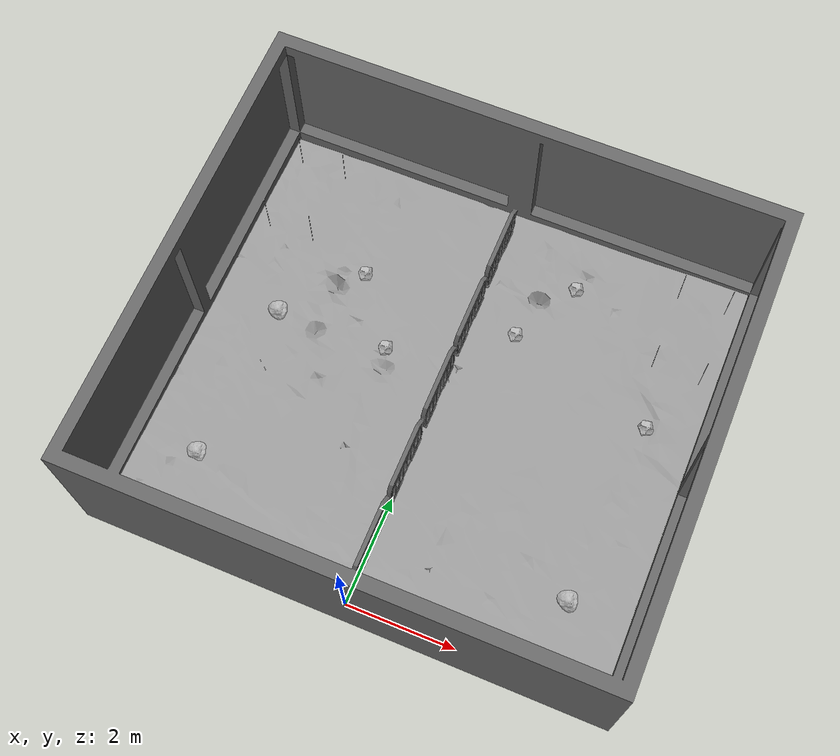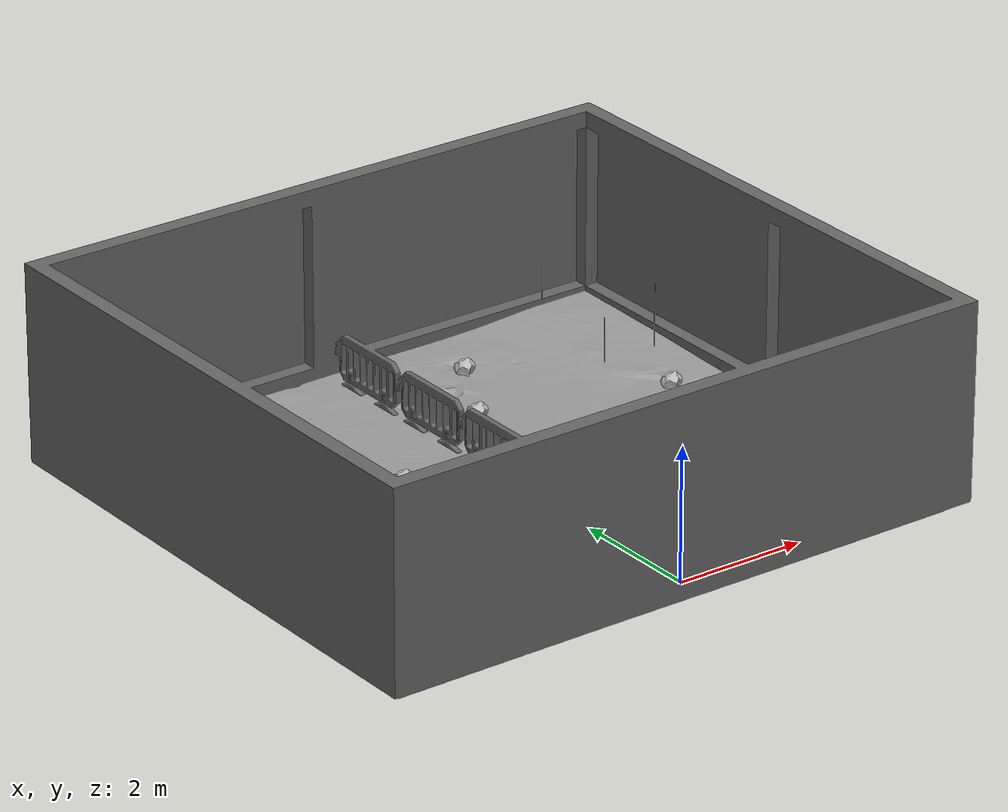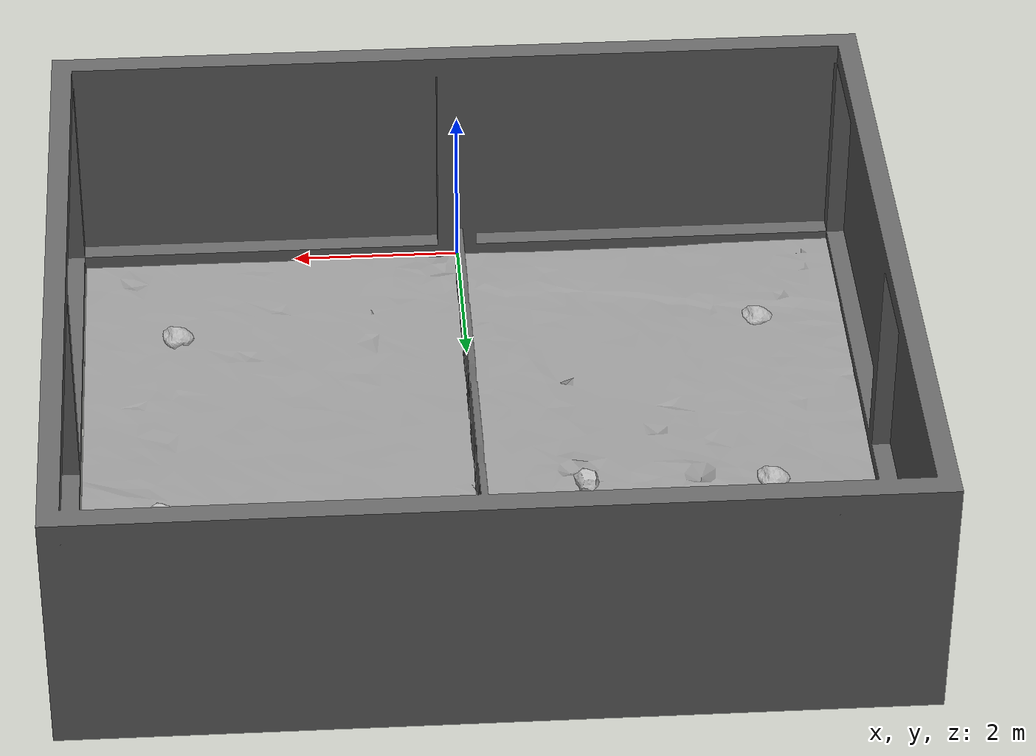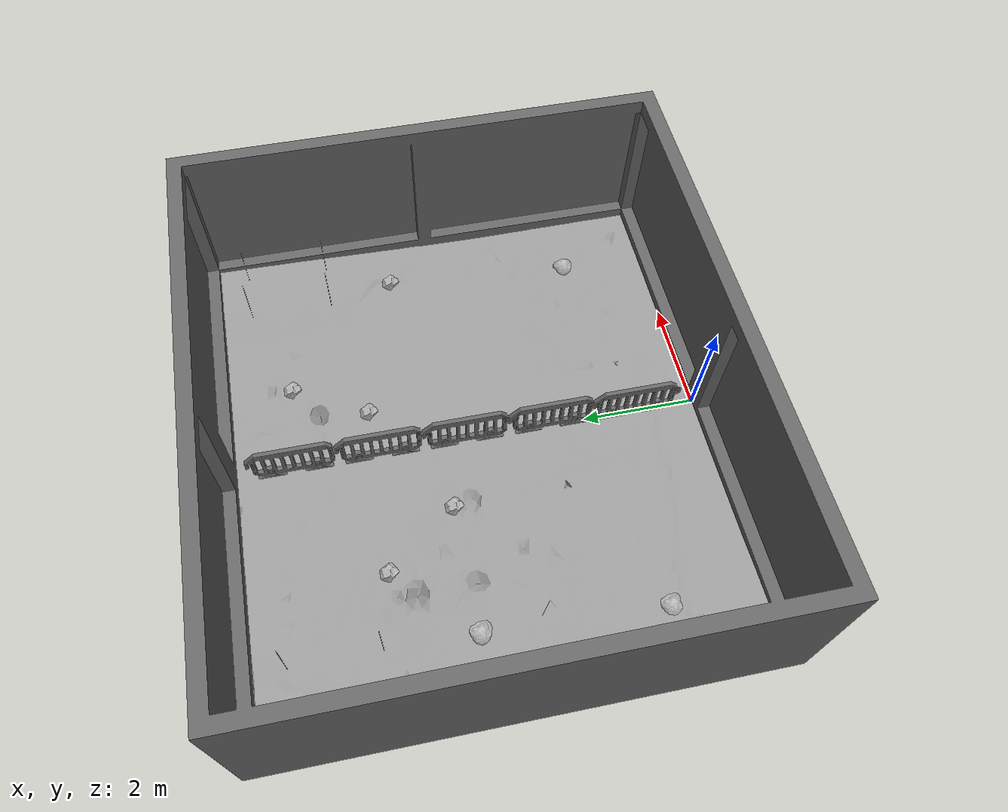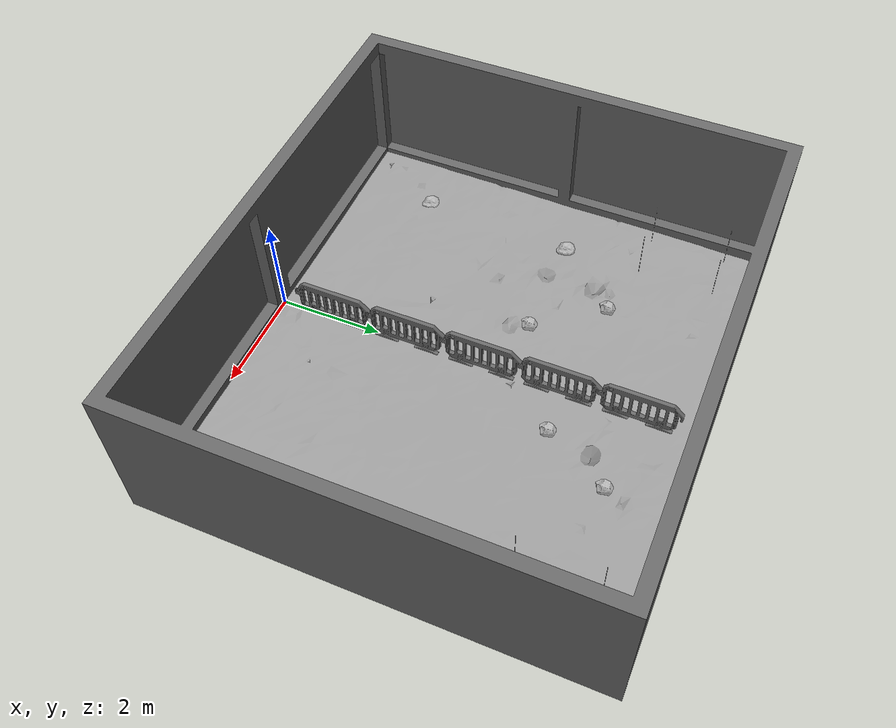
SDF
<?xml version="1.0"?>
<sdf version="1.10">
  <world name="ucf-arena">

    <plugin
      filename="gz-sim-physics-system"
      name="gz::sim::systems::Physics">
    </plugin>
    <plugin
      filename="gz-sim-user-commands-system"
      name="gz::sim::systems::UserCommands">
    </plugin>
    <plugin
      filename="gz-sim-scene-broadcaster-system"
      name="gz::sim::systems::SceneBroadcaster">
    </plugin>
    <plugin
      filename="gz-sim-sensors-system"
      name="gz::sim::systems::Sensors">
      <render_engine>ogre2</render_engine>
    </plugin>
    <plugin
      filename="gz-sim-imu-system"
      name="gz::sim::systems::Imu">
    </plugin>

    <gui fullscreen="0">
      <plugin filename="MinimalScene" name="3D View">
        <gz-gui>
          <title>3D View</title>
          <property type="bool" key="showTitleBar">false</property>
          <property type="string" key="state">docked</property>
        </gz-gui>
        <engine>ogre2</engine>
        <scene>scene</scene>
        <ambient_light>0.4 0.4 0.4</ambient_light>
        <background_color>0.8 0.8 0.8</background_color>
        <camera_pose>0 7 2 0 0.2 -1.5708</camera_pose>
      </plugin>
      <plugin filename="EntityContextMenuPlugin" name="Entity context menu">
      </plugin>
      <plugin filename="GzSceneManager" name="Scene Manager">
        <gz-gui>
          <property key="resizable" type="bool">false</property>
          <property key="width" type="double">5</property>
          <property key="height" type="double">5</property>
          <property key="state" type="string">floating</property>
          <property key="showTitleBar" type="bool">false</property>
        </gz-gui>
      </plugin>
      <plugin filename="InteractiveViewControl" name="Interactive view control">
      </plugin>
      <plugin filename="CameraTracking" name="Camera Tracking">
      </plugin>
      <plugin filename="SelectEntities" name="Select Entities">
      </plugin>
      <plugin filename="VisualizationCapabilities" name="Visualization Capabilities">
      </plugin>
      <plugin filename="WorldControl" name="World control">
        <play_pause>true</play_pause>
        <step>true</step>
        <start_paused>false</start_paused>
        <service>/world/world_demo/control</service>
        <stats_topic>/world/world_demo/stats</stats_topic>
      </plugin>
      <plugin filename="WorldStats" name="World stats">
        <gz-gui>
          <title>World stats</title>
          <property type="bool" key="showTitleBar">false</property>
          <property type="bool" key="resizable">false</property>
          <property type="double" key="height">110</property>
          <property type="double" key="width">290</property>
          <property type="double" key="z">1</property>

          <property type="string" key="state">floating</property>
          <anchors target="3D View">
            <line own="right" target="right"/>
            <line own="bottom" target="bottom"/>
          </anchors>
        </gz-gui>
        <sim_time>true</sim_time>
        <real_time>true</real_time>
        <real_time_factor>true</real_time_factor>
        <iterations>true</iterations>
        <topic>/world/world_demo/stats</topic>
      </plugin>
      <plugin filename="TransformControl" name="Transform control">
      </plugin>
      <plugin filename="ComponentInspector" name="Component inspector">
      </plugin>
      <plugin filename="EntityTree" name="Entity tree">
      </plugin>
    </gui>

    <!-- Scene -->
    <scene>
      <ambient>0.3 0.3 0.3 1</ambient>
      <shadows>true</shadows>
    </scene>

    <!-- Light -->
    <light name="sun" type="directional">
      <cast_shadows>true</cast_shadows>
      <pose>0 4 5 0 0 0</pose>
      <diffuse>0.3 0.3 0.3 1</diffuse>
      <specular>0.3 0.3 0.3 1</specular>
      <direction>0 0 -1</direction>
    </light>

    <!-- Gravity -->
    <gravity>0 0 -9.81</gravity>

    <model name = "ucf_arena">
      <static>true</static>
      <pose>0 0 0 0 0 0</pose>
      <link name = "link">
        <visual name = "arena_visual">
          <geometry>
            <mesh>
              <uri>./meshes/ucf/ucf-arena.dae</uri>
              <scale>1 1 1</scale>
            </mesh>
          </geometry>
          <material>
            <ambient>0.4 0.4 0.4 1</ambient>
            <diffuse>0.4 0.4 0.4 1</diffuse>
            <specular>0.4 0.4 0.4 1</specular>
          </material>
        </visual>
        <collision name = "arena_collision">
          <geometry>
            <mesh>
              <uri>./meshes/ucf/ucf-arena.dae</uri>
              <scale>1 1 1</scale>
            </mesh>
          </geometry>
          <surface>
            <friction>
              <ode>
                <mu>0.8</mu>
                <mu2>0.8</mu2>
              </ode>
              <torsional><ode/></torsional>
            </friction>
            <contact><ode/></contact>
            <bounce/>
          </surface>
        </collision>

        <visual name = "terrain_visual">
          <geometry>
            <mesh>
              <uri>./meshes/terrain/ucf-terrain-1.dae</uri>
              <scale>1 1 1</scale>
            </mesh>
          </geometry>
          <material>
            <ambient>0.6 0.6 0.6 1</ambient>
            <diffuse>0.6 0.6 0.6 1</diffuse>
            <specular>0.6 0.6 0.6 1</specular>
          </material>
        </visual>
        <collision name = "terrain_collision">
          <geometry>
            <mesh>
              <uri>./meshes/terrain/ucf-terrain-1.stl</uri>
              <scale>1 1 1</scale>
            </mesh>
          </geometry>
          <surface>
            <friction>
              <ode>
                <mu>0.4</mu>
                <mu2>0.4</mu2>
              </ode>
              <torsional><ode/></torsional>
            </friction>
            <contact><ode/></contact>
            <bounce/>
          </surface>
        </collision>
      </link>
    </model>

    <model name='rock1'>
      <pose>-3.38496 4.56 0 0 0 0.8</pose>
      <static>true</static>
      <link name='link'>
        <inertial auto = 'true'>
          <mass>8.0</mass>
        </inertial>
        <visual name='rock1_visual'>
          <geometry>
            <mesh>
              <uri>./meshes/rocks/rock-8.dae</uri>
              <scale>0.7 0.7 0.7</scale>
            </mesh>
          </geometry>
        </visual>
        <collision name='rock1_collision'>
          <geometry>
            <mesh>
              <uri>./meshes/rocks/rock-8.dae</uri>
              <scale>0.7 0.7 0.7</scale>
            </mesh>
          </geometry>
        </collision>
      </link>
    </model>

    <model name='rock2'>
      <pose>-2.13309 5.81296 0 0 -0.02 -2.2</pose>
      <static>true</static>
      <link name='link'>
        <inertial auto = 'true'>
          <mass>5.0</mass>
        </inertial>
        <visual name='rock2_visual'>
          <geometry>
            <mesh>
              <uri>./meshes/rocks/rock-7.dae</uri>
              <scale>0.7 0.7 0.7</scale>
            </mesh>
          </geometry>
        </visual>
        <collision name='rock2_collision'>
          <geometry>
            <mesh>
              <uri>./meshes/rocks/rock-7.dae</uri>
              <scale>0.7 0.7 0.7</scale>
            </mesh>
          </geometry>
        </collision>
      </link>
    </model>

    <model name='rock3'>
      <pose>-1.19102 4.57 0 0 0 -2.2</pose>
      <static>true</static>
      <link name='link'>
        <inertial auto = 'true'>
          <mass>5.0</mass>
        </inertial>
        <visual name='rock3_visual'>
          <geometry>
            <mesh>
              <uri>./meshes/rocks/rock-7.dae</uri>
              <scale>0.7 0.7 0.7</scale>
            </mesh>
          </geometry>
        </visual>
        <collision name='rock3_collision'>
          <geometry>
            <mesh>
              <uri>./meshes/rocks/rock-7.dae</uri>
              <scale>0.7 0.7 0.7</scale>
            </mesh>
          </geometry>
        </collision>
      </link>
    </model>

    <model name='rock4'>
      <pose>-3.54076 1.5 0 0 0 0.8</pose>
      <static>true</static>
      <link name='link'>
        <inertial auto = 'true'>
          <mass>5.0</mass>
        </inertial>
        <visual name='rock4_visual'>
          <geometry>
            <mesh>
              <uri>./meshes/rocks/rock-8.dae</uri>
              <scale>0.7 0.7 0.7</scale>
            </mesh>
          </geometry>
        </visual>
        <collision name='rock4_collision'>
          <geometry>
            <mesh>
              <uri>./meshes/rocks/rock-8.dae</uri>
              <scale>0.7 0.7 0.7</scale>
            </mesh>
          </geometry>
        </collision>
      </link>
    </model>

    <model name='rock5'>
      <pose>3.46 1.5 0 0 0 0.8</pose>
      <static>true</static>
      <link name='link'>
        <inertial auto = 'true'>
          <mass>5.0</mass>
        </inertial>
        <visual name='rock5_visual'>
          <geometry>
            <mesh>
              <uri>./meshes/rocks/rock-8.dae</uri>
              <scale>0.7 0.7 0.7</scale>
            </mesh>
          </geometry>
        </visual>
        <collision name='rock5_collision'>
          <geometry>
            <mesh>
              <uri>./meshes/rocks/rock-8.dae</uri>
              <scale>0.7 0.7 0.7</scale>
            </mesh>
          </geometry>
        </collision>
      </link>
    </model>

    <model name='rock6'>
      <pose>3.7 4.9 0 0 0 -2.2</pose>
      <static>true</static>
      <link name='link'>
        <inertial auto = 'true'>
          <mass>5.0</mass>
        </inertial>
        <visual name='rock6_visual'>
          <geometry>
            <mesh>
              <uri>./meshes/rocks/rock-7.dae</uri>
              <scale>0.7 0.7 0.7</scale>
            </mesh>
          </geometry>
        </visual>
        <collision name='rock6_collision'>
          <geometry>
            <mesh>
              <uri>./meshes/rocks/rock-7.dae</uri>
              <scale>0.7 0.7 0.7</scale>
            </mesh>
          </geometry>
        </collision>
      </link>
    </model>

    <model name='rock7'>
      <pose>1.61448 7 0 0 0 -2.2</pose>
      <static>true</static>
      <link name='link'>
        <inertial auto = 'true'>
          <mass>5.0</mass>
        </inertial>
        <visual name='rock7_visual'>
          <geometry>
            <mesh>
              <uri>./meshes/rocks/rock-7.dae</uri>
              <scale>0.7 0.7 0.7</scale>
            </mesh>
          </geometry>
        </visual>
        <collision name='rock7_collision'>
          <geometry>
            <mesh>
              <uri>./meshes/rocks/rock-7.dae</uri>
              <scale>0.7 0.7 0.7</scale>
            </mesh>
          </geometry>
        </collision>
      </link>
    </model>

    <model name='rock8'>
      <pose>0.9 5.7155 0 0 0 -2.2</pose>
      <static>true</static>
      <link name='link'>
        <inertial auto = 'true'>
          <mass>5.0</mass>
        </inertial>
        <visual name='rock8_visual'>
          <geometry>
            <mesh>
              <uri>./meshes/rocks/rock-7.dae</uri>
              <scale>0.7 0.7 0.7</scale>
            </mesh>
          </geometry>
        </visual>
        <collision name='rock8_collision'>
          <geometry>
            <mesh>
              <uri>./meshes/rocks/rock-7.dae</uri>
              <scale>0.7 0.7 0.7</scale>
            </mesh>
          </geometry>
        </collision>
      </link>
    </model>

    <physics type="ode">
      <real_time_update_rate>1000.0</real_time_update_rate>
      <max_step_size>0.001</max_step_size>
      <real_time_factor>1</real_time_factor>
      <ode>
        <solver>
          <type>quick</type>
          <iters>150</iters>
          <precon_iters>0</precon_iters>
          <sor>1.400000</sor>
          <use_dynamic_moi_rescaling>1</use_dynamic_moi_rescaling>
        </solver>
        <constraints>
          <cfm>0.00001</cfm>
          <erp>0.2</erp>
          <contact_max_correcting_vel>2000.000000</contact_max_correcting_vel>
          <contact_surface_layer>0.01000</contact_surface_layer>
        </constraints>
      </ode>
    </physics>

  </world>
</sdf>
